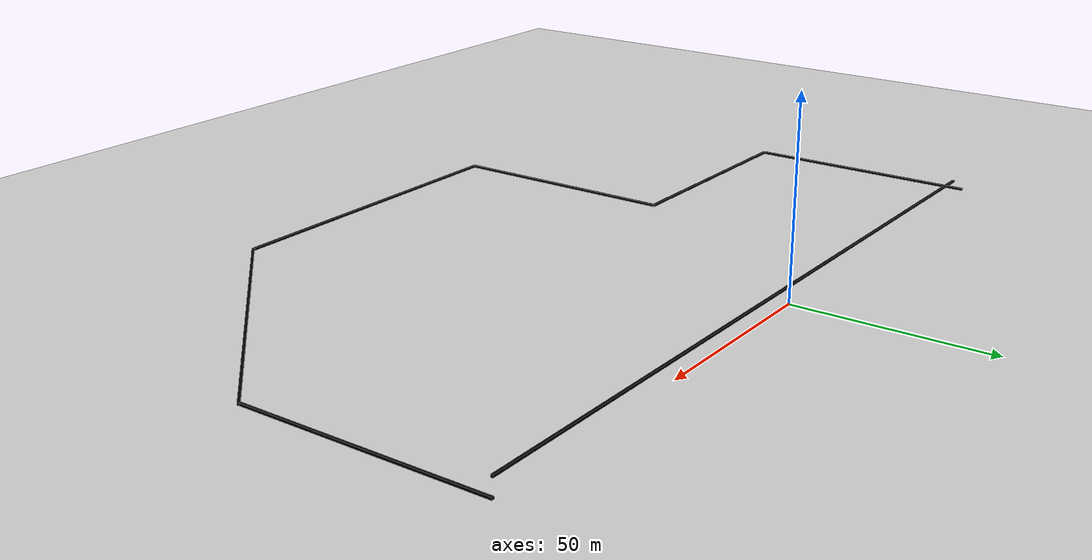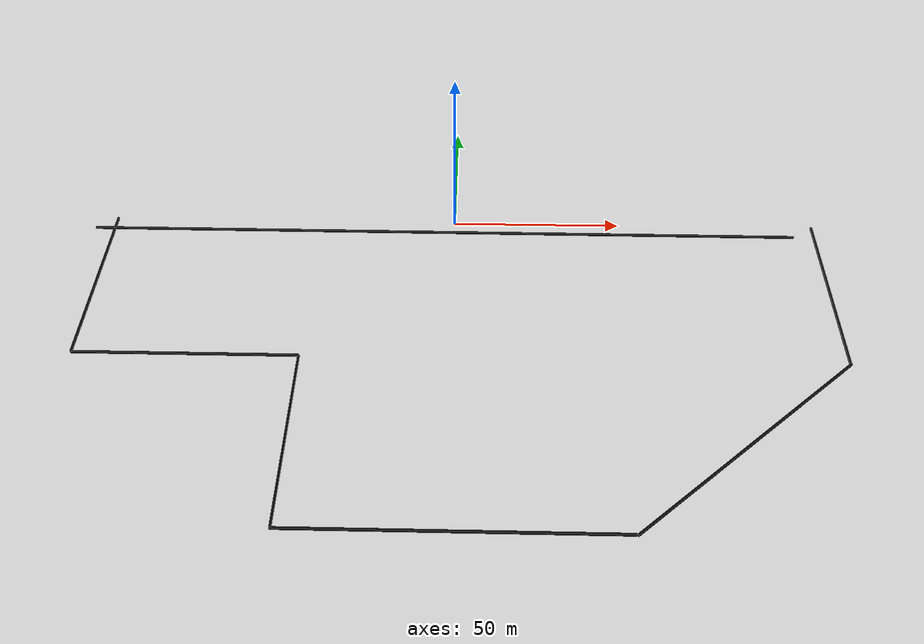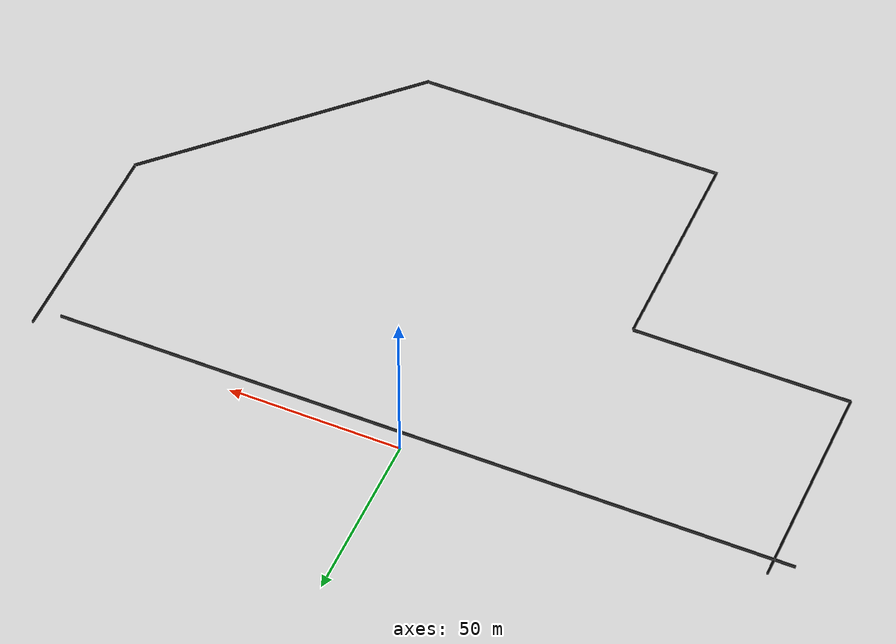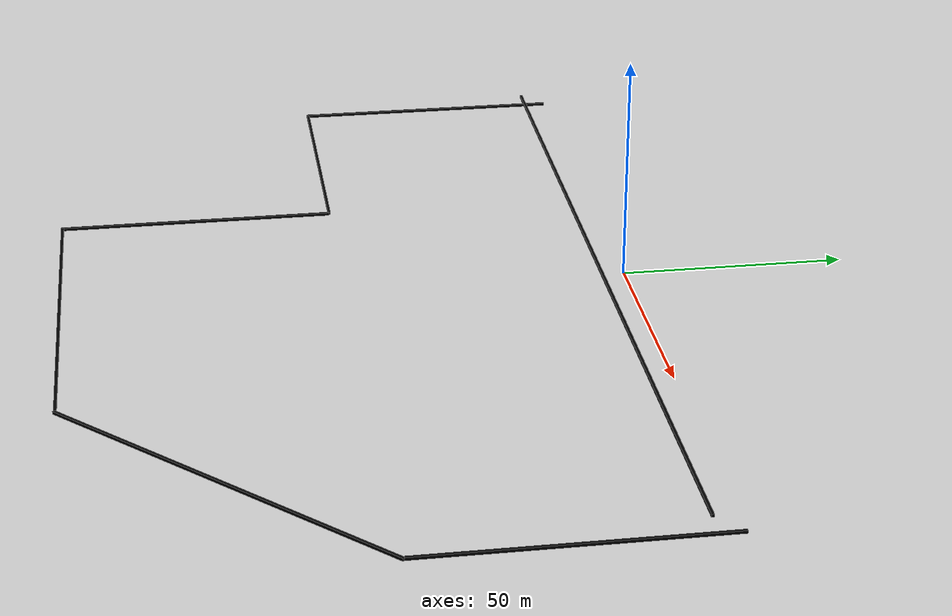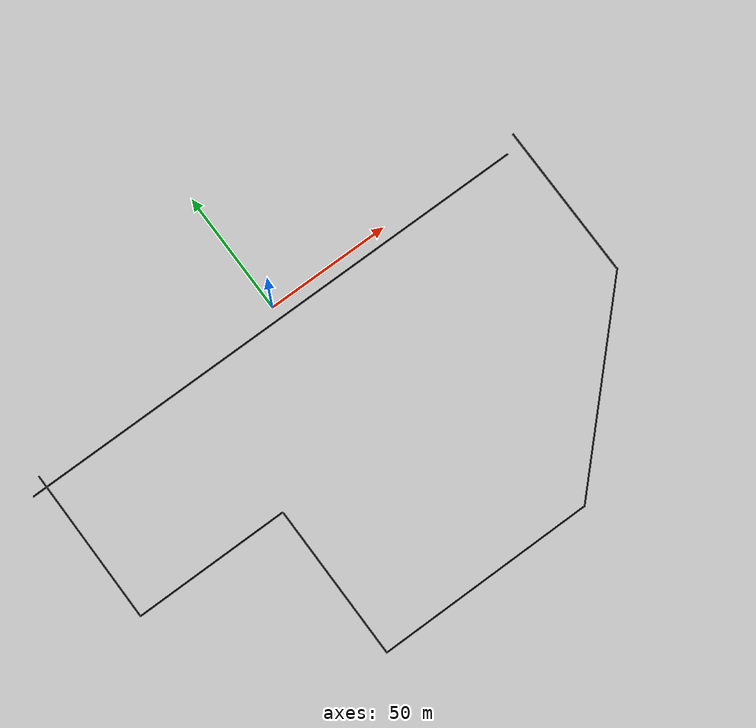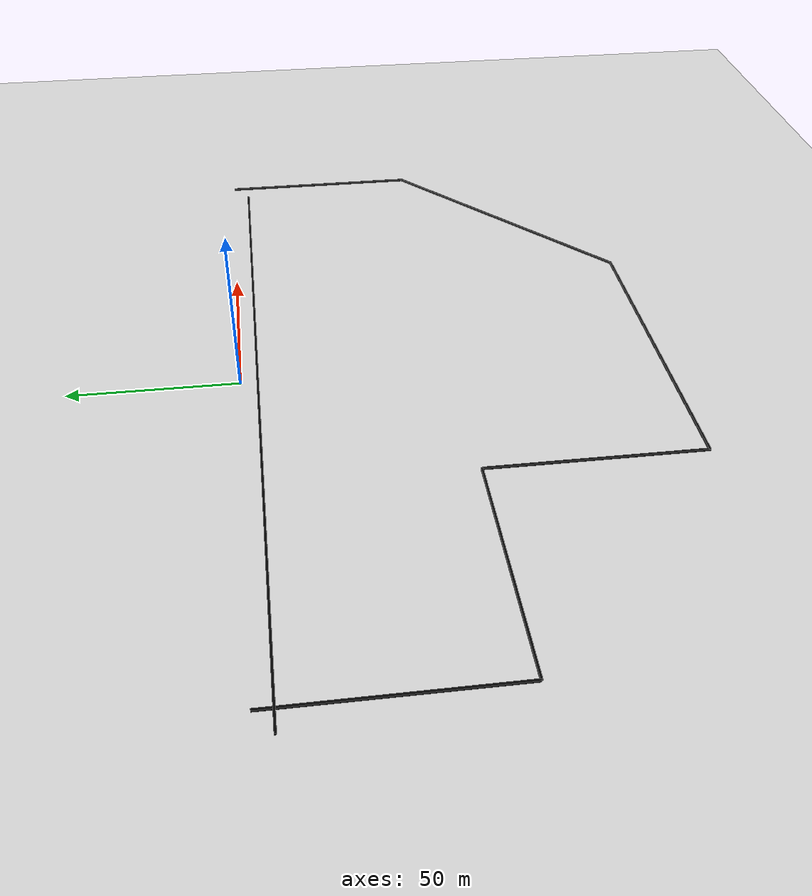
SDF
<sdf version="1.10">
 <world name="empty">
  <physics name="1ms" type="ignored">
   <max_step_size>0.001</max_step_size>
   <real_time_factor>1</real_time_factor>
   <real_time_update_rate>1000</real_time_update_rate>
  </physics>
  <plugin name="gz::sim::systems::Physics" filename="gz-sim-physics-system"/>
  <plugin name="gz::sim::systems::UserCommands" filename="gz-sim-user-commands-system"/>
  <plugin name="gz::sim::systems::SceneBroadcaster" filename="gz-sim-scene-broadcaster-system"/>
  <plugin name="gz::sim::systems::Contact" filename="gz-sim-contact-system"/>
  <plugin name="gz::sim::systems::Sensors" filename="gz-sim-sensors-system">
   <render_engine>ogre2</render_engine>
  </plugin>
  <plugin name="gz::sim::systems::Imu" filename="gz-sim-imu-system"/>
  <plugin name="gz::sim::systems::NavSat" filename="gz-sim-navsat-system"/>
  <gravity>0 0 -9.8000000000000007</gravity>
  <magnetic_field>5.5644999999999998e-06 2.2875799999999999e-05 -4.2388400000000002e-05</magnetic_field>
  <atmosphere type="adiabatic"/>
  <scene>
   <ambient>1 1 1 1</ambient>
   <background>0.800000012 0.800000012 0.800000012 1</background>
   <shadows>true</shadows>
  </scene>
  <spherical_coordinates>
   <latitude_deg>-35.363261999999999</latitude_deg>
   <longitude_deg>149.16523699999999</longitude_deg>
   <elevation>584</elevation>
   <heading_deg>0</heading_deg>
   <surface_model>EARTH_WGS84</surface_model>
  </spherical_coordinates>
  <model name="ground_plane">
   <static>true</static>
   <link name="link">
    <collision name="collision">
     <geometry><plane><normal>0 0 1</normal><size>1000 1000</size></plane></geometry>
    </collision>
    <visual name="visual">
     <geometry><plane><normal>0 0 1</normal><size>1000 1000</size></plane></geometry>
     <material>
      <ambient>0.800000012 0.800000012 0.800000012 1</ambient>
      <diffuse>0.800000012 0.800000012 0.800000012 1</diffuse>
      <specular>0.800000012 0.800000012 0.800000012 1</specular>
     </material>
    </visual>
    <inertial>
     <mass>1</mass>
     <inertia><ixx>1</ixx><ixy>0</ixy><ixz>0</ixz><iyy>1</iyy><iyz>0</iyz><izz>1</izz></inertia>
    </inertial>
   </link>
  </model>
  <model name="axes">
   <static>true</static>
   <link name="link">
    <visual name="r">
     <cast_shadows>false</cast_shadows>
     <pose>5 0 0.10000000000000001 0 0 0</pose>
     <geometry><box><size>10 0.01 0.01</size></box></geometry>
     <material>
      <ambient>1 0 0 0.800000012</ambient>
      <diffuse>1 0 0 0.800000012</diffuse>
      <emissive>1 0 0 0.800000012</emissive>
      <specular>0.5 0.5 0.5 0.800000012</specular>
     </material>
    </visual>
    <visual name="g">
     <cast_shadows>false</cast_shadows>
     <pose>0 5 0.10000000000000001 0 0 0</pose>
     <geometry><box><size>0.01 10 0.01</size></box></geometry>
     <material>
      <ambient>0 1 0 0.800000012</ambient>
      <diffuse>0 1 0 0.800000012</diffuse>
      <emissive>0 1 0 0.800000012</emissive>
      <specular>0.5 0.5 0.5 0.800000012</specular>
     </material>
    </visual>
    <visual name="b">
     <cast_shadows>false</cast_shadows>
     <pose>0 0 5.0999999999999996 0 0 0</pose>
     <geometry><box><size>0.01 0.01 10</size></box></geometry>
     <material>
      <ambient>0 0 1 0.800000012</ambient>
      <diffuse>0 0 1 0.800000012</diffuse>
      <emissive>0 0 1 0.800000012</emissive>
      <specular>0.5 0.5 0.5 0.800000012</specular>
     </material>
    </visual>
    <sensor name="navsat_sensor" type="navsat"><always_on>true</always_on><update_rate>1</update_rate></sensor>
    <inertial>
     <mass>1</mass>
     <inertia><ixx>1</ixx><ixy>0</ixy><ixz>0</ixz><iyy>1</iyy><iyz>0</iyz><izz>1</izz></inertia>
    </inertial>
   </link>
  </model>
  <model name="polygon_walls">
   <link name="wall_AB">
    <pose>100.72799999999999 -5 0.316 0 0 0</pose>
    <collision name="collision">
     <geometry><box><size>213.43299999999999 0.63200000000000001 0.63200000000000001</size></box></geometry>
    </collision>
    <visual name="visual">
     <geometry><box><size>213.43299999999999 0.63200000000000001 0.63200000000000001</size></box></geometry>
     <material><diffuse>0 0 0 1</diffuse></material>
    </visual>
    <inertial>
     <mass>1</mass>
     <inertia><ixx>1</ixx><ixy>0</ixy><ixz>0</ixz><iyy>1</iyy><iyz>0</iyz><izz>1</izz></inertia>
    </inertial>
   </link>
   <link name="wall_BC">
    <pose>213.43299999999999 -31.405000000000001 0.316 0 0 1.5708000000000006</pose>
    <collision name="collision">
     <geometry><box><size>62.822000000000003 0.63200000000000001 0.63200000000000001</size></box></geometry>
    </collision>
    <visual name="visual">
     <geometry><box><size>62.822000000000003 0.63200000000000001 0.63200000000000001</size></box></geometry>
     <material><diffuse>0 0 0 1</diffuse></material>
    </visual>
    <inertial>
     <mass>1</mass>
     <inertia><ixx>1</ixx><ixy>0</ixy><ixz>0</ixz><iyy>1</iyy><iyz>0</iyz><izz>1</izz></inertia>
    </inertial>
   </link>
   <link name="wall_CD">
    <pose>182.30500000000001 -94.302999999999997 0.316 0 0 0.7854000000000001</pose>
    <collision name="collision">
     <geometry><box><size>88.911000000000001 0.63200000000000001 0.63200000000000001</size></box></geometry>
    </collision>
    <visual name="visual">
     <geometry><box><size>88.911000000000001 0.63200000000000001 0.63200000000000001</size></box></geometry>
     <material><diffuse>0 0 0 1</diffuse></material>
    </visual>
    <inertial>
     <mass>1</mass>
     <inertia><ixx>1</ixx><ixy>0</ixy><ixz>0</ixz><iyy>1</iyy><iyz>0</iyz><izz>1</izz></inertia>
    </inertial>
   </link>
   <link name="wall_DE">
    <pose>106.72799999999999 -125.48099999999999 0.316 0 0 0</pose>
    <collision name="collision">
     <geometry><box><size>87.974999999999994 0.63200000000000001 0.63200000000000001</size></box></geometry>
    </collision>
    <visual name="visual">
     <geometry><box><size>87.974999999999994 0.63200000000000001 0.63200000000000001</size></box></geometry>
     <material><diffuse>0 0 0 1</diffuse></material>
    </visual>
    <inertial>
     <mass>1</mass>
     <inertia><ixx>1</ixx><ixy>0</ixy><ixz>0</ixz><iyy>1</iyy><iyz>0</iyz><izz>1</izz></inertia>
    </inertial>
   </link>
   <link name="wall_EF">
    <pose>62.822000000000003 -94.302999999999997 0.316 0 0 1.5708000000000006</pose>
    <collision name="collision">
     <geometry><box><size>62.822000000000003 0.63200000000000001 0.63200000000000001</size></box></geometry>
    </collision>
    <visual name="visual">
     <geometry><box><size>62.822000000000003 0.63200000000000001 0.63200000000000001</size></box></geometry>
     <material><diffuse>0 0 0 1</diffuse></material>
    </visual>
    <inertial>
     <mass>1</mass>
     <inertia><ixx>1</ixx><ixy>0</ixy><ixz>0</ixz><iyy>1</iyy><iyz>0</iyz><izz>1</izz></inertia>
    </inertial>
   </link>
   <link name="wall_FG">
    <pose>31.405000000000001 -62.822000000000003 0.316 0 0 0</pose>
    <collision name="collision">
     <geometry><box><size>62.822000000000003 0.63200000000000001 0.63200000000000001</size></box></geometry>
    </collision>
    <visual name="visual">
     <geometry><box><size>62.822000000000003 0.63200000000000001 0.63200000000000001</size></box></geometry>
     <material><diffuse>0 0 0 1</diffuse></material>
    </visual>
    <inertial>
     <mass>1</mass>
     <inertia><ixx>1</ixx><ixy>0</ixy><ixz>0</ixz><iyy>1</iyy><iyz>0</iyz><izz>1</izz></inertia>
    </inertial>
   </link>
   <link name="wall_GA">
    <pose>0 -31.405000000000001 0.316 0 0 1.5708000000000006</pose>
    <collision name="collision">
     <geometry><box><size>62.822000000000003 0.63200000000000001 0.63200000000000001</size></box></geometry>
    </collision>
    <visual name="visual">
     <geometry><box><size>62.822000000000003 0.63200000000000001 0.63200000000000001</size></box></geometry>
     <material><diffuse>0 0 0 1</diffuse></material>
    </visual>
    <inertial>
     <mass>1</mass>
     <inertia><ixx>1</ixx><ixy>0</ixy><ixz>0</ixz><iyy>1</iyy><iyz>0</iyz><izz>1</izz></inertia>
    </inertial>
   </link>
   <static>true</static>
   <pose>-104.16500000000001 0 0 0 0 0</pose>
  </model>
 </world>
</sdf>
